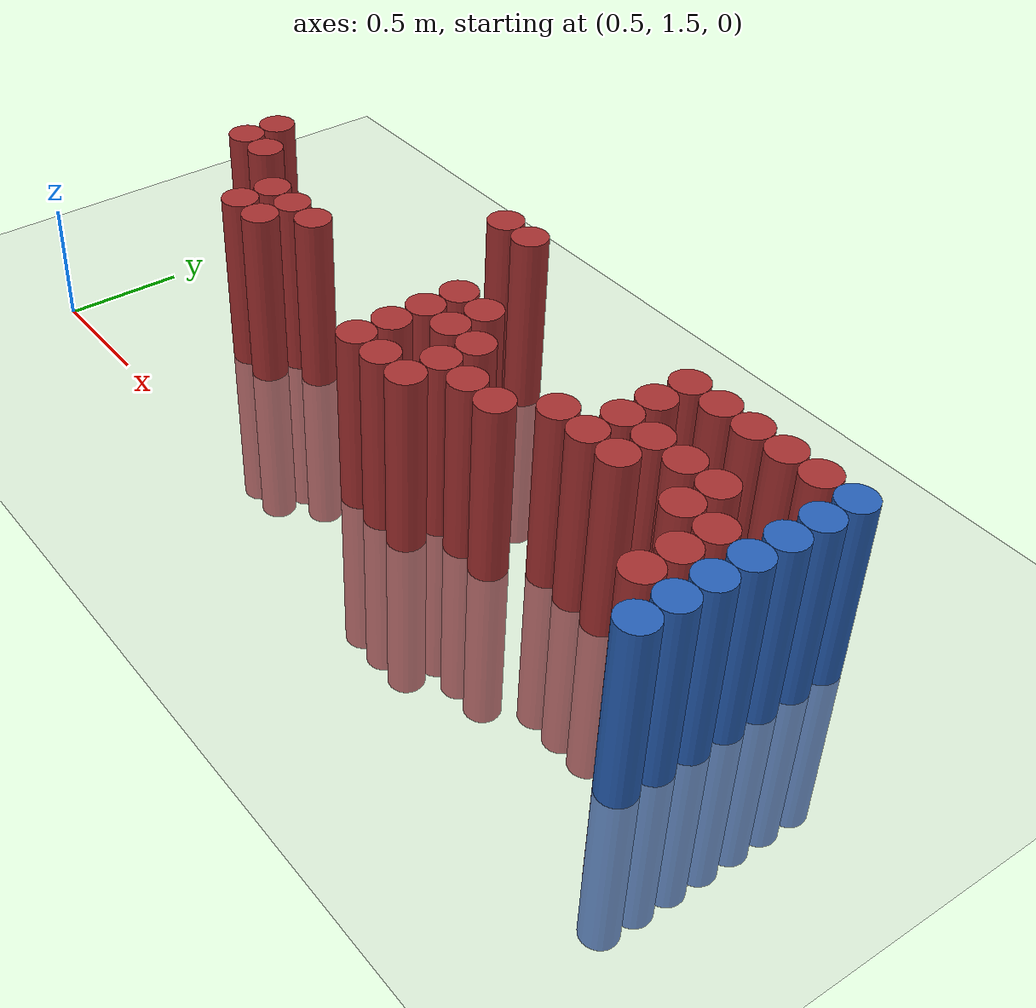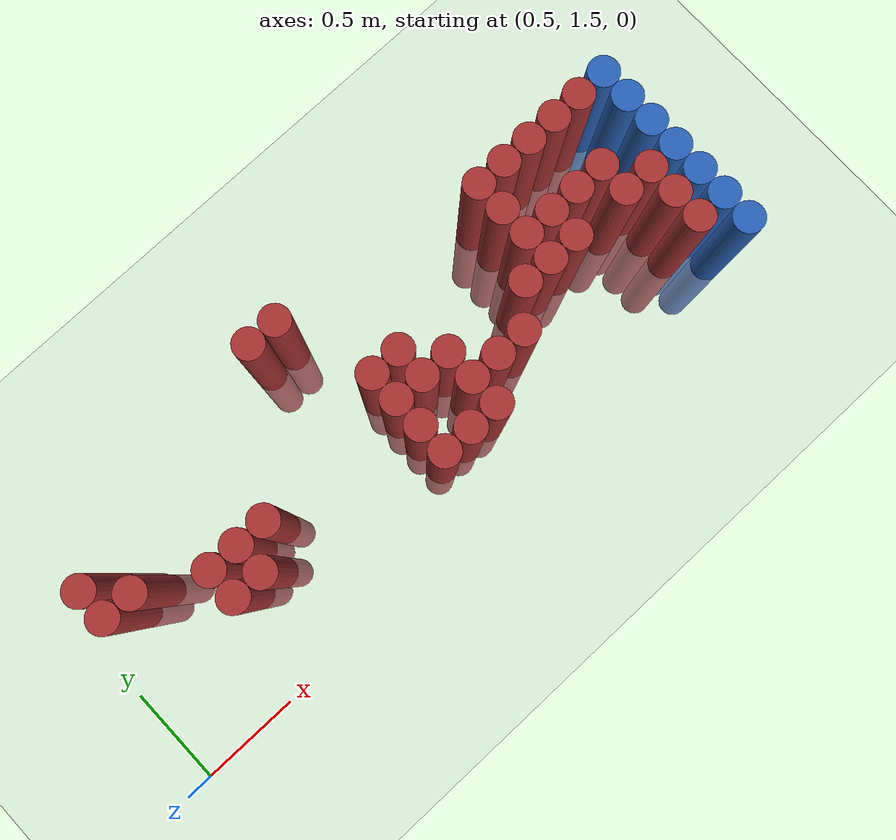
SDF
<sdf version="1.6">
 <world name="default">
  <model name="ground_plane">
   <static>1</static>
   <link name="link">
    <collision name="collision">
     <geometry><plane><normal>0 0 1</normal><size>100 100</size></plane></geometry>
     <surface><friction><ode><mu>100</mu><mu2>50</mu2></ode></friction></surface>
    </collision>
    <visual name="visual">
     <cast_shadows>0</cast_shadows>
     <geometry><plane><normal>0 0 1</normal><size>100 100</size></plane></geometry>
     <material>
      <script><uri>file://media/materials/scripts/gazebo.material</uri><name>Gazebo/Grey</name></script>
     </material>
    </visual>
   </link>
  </model>
  <model name="unit_cylinder_138">
   <static>1</static>
   <pose>3.925000 1.825000 0.000000 0.000000 0.000000 0.000000</pose>
   <link name="link">
    <inertial>
     <mass>1</mass>
     <inertia><ixx>0.145833</ixx><ixy>0</ixy><ixz>0</ixz><iyy>0.145833</iyy><iyz>0</iyz><izz>0.125</izz></inertia>
    </inertial>
    <collision name="collision">
     <geometry><cylinder><radius>0.075000</radius><length>1.5</length></cylinder></geometry>
    </collision>
    <visual name="visual">
     <geometry><cylinder><radius>0.075000</radius><length>1.5</length></cylinder></geometry>
     <material>
      <ambient>0.152000 0.379000 0.720000 1</ambient>
      <diffuse>0.152000 0.379000 0.720000 1</diffuse>
     </material>
     <material>
      <script><name>Gazebo/Grey</name><uri>file://media/materials/scripts/gazebo.material</uri></script>
     </material>
    </visual>
   </link>
  </model>
  <model name="unit_cylinder_140">
   <static>1</static>
   <pose>3.925000 1.975000 0.000000 0.000000 0.000000 0.000000</pose>
   <link name="link">
    <inertial>
     <mass>1</mass>
     <inertia><ixx>0.145833</ixx><ixy>0</ixy><ixz>0</ixz><iyy>0.145833</iyy><iyz>0</iyz><izz>0.125</izz></inertia>
    </inertial>
    <collision name="collision">
     <geometry><cylinder><radius>0.075000</radius><length>1.5</length></cylinder></geometry>
    </collision>
    <visual name="visual">
     <geometry><cylinder><radius>0.075000</radius><length>1.5</length></cylinder></geometry>
     <material>
      <ambient>0.152000 0.379000 0.720000 1</ambient>
      <diffuse>0.152000 0.379000 0.720000 1</diffuse>
     </material>
     <material>
      <script><name>Gazebo/Grey</name><uri>file://media/materials/scripts/gazebo.material</uri></script>
     </material>
    </visual>
   </link>
  </model>
  <model name="unit_cylinder_142">
   <static>1</static>
   <pose>3.925000 2.125000 0.000000 0.000000 0.000000 0.000000</pose>
   <link name="link">
    <inertial>
     <mass>1</mass>
     <inertia><ixx>0.145833</ixx><ixy>0</ixy><ixz>0</ixz><iyy>0.145833</iyy><iyz>0</iyz><izz>0.125</izz></inertia>
    </inertial>
    <collision name="collision">
     <geometry><cylinder><radius>0.075000</radius><length>1.5</length></cylinder></geometry>
    </collision>
    <visual name="visual">
     <geometry><cylinder><radius>0.075000</radius><length>1.5</length></cylinder></geometry>
     <material>
      <ambient>0.152000 0.379000 0.720000 1</ambient>
      <diffuse>0.152000 0.379000 0.720000 1</diffuse>
     </material>
     <material>
      <script><name>Gazebo/Grey</name><uri>file://media/materials/scripts/gazebo.material</uri></script>
     </material>
    </visual>
   </link>
  </model>
  <model name="unit_cylinder_144">
   <static>1</static>
   <pose>3.925000 2.275000 0.000000 0.000000 0.000000 0.000000</pose>
   <link name="link">
    <inertial>
     <mass>1</mass>
     <inertia><ixx>0.145833</ixx><ixy>0</ixy><ixz>0</ixz><iyy>0.145833</iyy><iyz>0</iyz><izz>0.125</izz></inertia>
    </inertial>
    <collision name="collision">
     <geometry><cylinder><radius>0.075000</radius><length>1.5</length></cylinder></geometry>
    </collision>
    <visual name="visual">
     <geometry><cylinder><radius>0.075000</radius><length>1.5</length></cylinder></geometry>
     <material>
      <ambient>0.152000 0.379000 0.720000 1</ambient>
      <diffuse>0.152000 0.379000 0.720000 1</diffuse>
     </material>
     <material>
      <script><name>Gazebo/Grey</name><uri>file://media/materials/scripts/gazebo.material</uri></script>
     </material>
    </visual>
   </link>
  </model>
  <model name="unit_cylinder_146">
   <static>1</static>
   <pose>3.925000 2.425000 0.000000 0.000000 0.000000 0.000000</pose>
   <link name="link">
    <inertial>
     <mass>1</mass>
     <inertia><ixx>0.145833</ixx><ixy>0</ixy><ixz>0</ixz><iyy>0.145833</iyy><iyz>0</iyz><izz>0.125</izz></inertia>
    </inertial>
    <collision name="collision">
     <geometry><cylinder><radius>0.075000</radius><length>1.5</length></cylinder></geometry>
    </collision>
    <visual name="visual">
     <geometry><cylinder><radius>0.075000</radius><length>1.5</length></cylinder></geometry>
     <material>
      <ambient>0.152000 0.379000 0.720000 1</ambient>
      <diffuse>0.152000 0.379000 0.720000 1</diffuse>
     </material>
     <material>
      <script><name>Gazebo/Grey</name><uri>file://media/materials/scripts/gazebo.material</uri></script>
     </material>
    </visual>
   </link>
  </model>
  <model name="unit_cylinder_148">
   <static>1</static>
   <pose>3.925000 2.575000 0.000000 0.000000 0.000000 0.000000</pose>
   <link name="link">
    <inertial>
     <mass>1</mass>
     <inertia><ixx>0.145833</ixx><ixy>0</ixy><ixz>0</ixz><iyy>0.145833</iyy><iyz>0</iyz><izz>0.125</izz></inertia>
    </inertial>
    <collision name="collision">
     <geometry><cylinder><radius>0.075000</radius><length>1.5</length></cylinder></geometry>
    </collision>
    <visual name="visual">
     <geometry><cylinder><radius>0.075000</radius><length>1.5</length></cylinder></geometry>
     <material>
      <ambient>0.152000 0.379000 0.720000 1</ambient>
      <diffuse>0.152000 0.379000 0.720000 1</diffuse>
     </material>
     <material>
      <script><name>Gazebo/Grey</name><uri>file://media/materials/scripts/gazebo.material</uri></script>
     </material>
    </visual>
   </link>
  </model>
  <model name="unit_cylinder_404">
   <static>1</static>
   <pose>0.775000 2.275000 0.000000 0.000000 0.000000 0.000000</pose>
   <link name="link">
    <inertial>
     <mass>1</mass>
     <inertia><ixx>0.145833</ixx><ixy>0</ixy><ixz>0</ixz><iyy>0.145833</iyy><iyz>0</iyz><izz>0.125</izz></inertia>
    </inertial>
    <collision name="collision">
     <geometry><cylinder><radius>0.075000</radius><length>1.5</length></cylinder></geometry>
    </collision>
    <visual name="visual">
     <geometry><cylinder><radius>0.075000</radius><length>1.5</length></cylinder></geometry>
     <material>
      <ambient>0.648000 0.192000 0.192000 1</ambient>
      <diffuse>0.648000 0.192000 0.192000 1</diffuse>
     </material>
     <material>
      <script><name>Gazebo/Grey</name><uri>file://media/materials/scripts/gazebo.material</uri></script>
     </material>
    </visual>
   </link>
  </model>
  <model name="unit_cylinder_405">
   <static>1</static>
   <pose>0.775000 2.425000 0.000000 0.000000 0.000000 0.000000</pose>
   <link name="link">
    <inertial>
     <mass>1</mass>
     <inertia><ixx>0.145833</ixx><ixy>0</ixy><ixz>0</ixz><iyy>0.145833</iyy><iyz>0</iyz><izz>0.125</izz></inertia>
    </inertial>
    <collision name="collision">
     <geometry><cylinder><radius>0.075000</radius><length>1.5</length></cylinder></geometry>
    </collision>
    <visual name="visual">
     <geometry><cylinder><radius>0.075000</radius><length>1.5</length></cylinder></geometry>
     <material>
      <ambient>0.648000 0.192000 0.192000 1</ambient>
      <diffuse>0.648000 0.192000 0.192000 1</diffuse>
     </material>
     <material>
      <script><name>Gazebo/Grey</name><uri>file://media/materials/scripts/gazebo.material</uri></script>
     </material>
    </visual>
   </link>
  </model>
  <model name="unit_cylinder_408">
   <static>1</static>
   <pose>0.925000 2.275000 0.000000 0.000000 0.000000 0.000000</pose>
   <link name="link">
    <inertial>
     <mass>1</mass>
     <inertia><ixx>0.145833</ixx><ixy>0</ixy><ixz>0</ixz><iyy>0.145833</iyy><iyz>0</iyz><izz>0.125</izz></inertia>
    </inertial>
    <collision name="collision">
     <geometry><cylinder><radius>0.075000</radius><length>1.5</length></cylinder></geometry>
    </collision>
    <visual name="visual">
     <geometry><cylinder><radius>0.075000</radius><length>1.5</length></cylinder></geometry>
     <material>
      <ambient>0.648000 0.192000 0.192000 1</ambient>
      <diffuse>0.648000 0.192000 0.192000 1</diffuse>
     </material>
     <material>
      <script><name>Gazebo/Grey</name><uri>file://media/materials/scripts/gazebo.material</uri></script>
     </material>
    </visual>
   </link>
  </model>
  <model name="unit_cylinder_416">
   <static>1</static>
   <pose>1.225000 1.975000 0.000000 0.000000 0.000000 0.000000</pose>
   <link name="link">
    <inertial>
     <mass>1</mass>
     <inertia><ixx>0.145833</ixx><ixy>0</ixy><ixz>0</ixz><iyy>0.145833</iyy><iyz>0</iyz><izz>0.125</izz></inertia>
    </inertial>
    <collision name="collision">
     <geometry><cylinder><radius>0.075000</radius><length>1.5</length></cylinder></geometry>
    </collision>
    <visual name="visual">
     <geometry><cylinder><radius>0.075000</radius><length>1.5</length></cylinder></geometry>
     <material>
      <ambient>0.648000 0.192000 0.192000 1</ambient>
      <diffuse>0.648000 0.192000 0.192000 1</diffuse>
     </material>
     <material>
      <script><name>Gazebo/Grey</name><uri>file://media/materials/scripts/gazebo.material</uri></script>
     </material>
    </visual>
   </link>
  </model>
  <model name="unit_cylinder_417">
   <static>1</static>
   <pose>1.225000 2.125000 0.000000 0.000000 0.000000 0.000000</pose>
   <link name="link">
    <inertial>
     <mass>1</mass>
     <inertia><ixx>0.145833</ixx><ixy>0</ixy><ixz>0</ixz><iyy>0.145833</iyy><iyz>0</iyz><izz>0.125</izz></inertia>
    </inertial>
    <collision name="collision">
     <geometry><cylinder><radius>0.075000</radius><length>1.5</length></cylinder></geometry>
    </collision>
    <visual name="visual">
     <geometry><cylinder><radius>0.075000</radius><length>1.5</length></cylinder></geometry>
     <material>
      <ambient>0.648000 0.192000 0.192000 1</ambient>
      <diffuse>0.648000 0.192000 0.192000 1</diffuse>
     </material>
     <material>
      <script><name>Gazebo/Grey</name><uri>file://media/materials/scripts/gazebo.material</uri></script>
     </material>
    </visual>
   </link>
  </model>
  <model name="unit_cylinder_421">
   <static>1</static>
   <pose>1.375000 1.975000 0.000000 0.000000 0.000000 0.000000</pose>
   <link name="link">
    <inertial>
     <mass>1</mass>
     <inertia><ixx>0.145833</ixx><ixy>0</ixy><ixz>0</ixz><iyy>0.145833</iyy><iyz>0</iyz><izz>0.125</izz></inertia>
    </inertial>
    <collision name="collision">
     <geometry><cylinder><radius>0.075000</radius><length>1.5</length></cylinder></geometry>
    </collision>
    <visual name="visual">
     <geometry><cylinder><radius>0.075000</radius><length>1.5</length></cylinder></geometry>
     <material>
      <ambient>0.648000 0.192000 0.192000 1</ambient>
      <diffuse>0.648000 0.192000 0.192000 1</diffuse>
     </material>
     <material>
      <script><name>Gazebo/Grey</name><uri>file://media/materials/scripts/gazebo.material</uri></script>
     </material>
    </visual>
   </link>
  </model>
  <model name="unit_cylinder_422">
   <static>1</static>
   <pose>1.375000 2.125000 0.000000 0.000000 0.000000 0.000000</pose>
   <link name="link">
    <inertial>
     <mass>1</mass>
     <inertia><ixx>0.145833</ixx><ixy>0</ixy><ixz>0</ixz><iyy>0.145833</iyy><iyz>0</iyz><izz>0.125</izz></inertia>
    </inertial>
    <collision name="collision">
     <geometry><cylinder><radius>0.075000</radius><length>1.5</length></cylinder></geometry>
    </collision>
    <visual name="visual">
     <geometry><cylinder><radius>0.075000</radius><length>1.5</length></cylinder></geometry>
     <material>
      <ambient>0.648000 0.192000 0.192000 1</ambient>
      <diffuse>0.648000 0.192000 0.192000 1</diffuse>
     </material>
     <material>
      <script><name>Gazebo/Grey</name><uri>file://media/materials/scripts/gazebo.material</uri></script>
     </material>
    </visual>
   </link>
  </model>
  <model name="unit_cylinder_426">
   <static>1</static>
   <pose>1.525000 2.125000 0.000000 0.000000 0.000000 0.000000</pose>
   <link name="link">
    <inertial>
     <mass>1</mass>
     <inertia><ixx>0.145833</ixx><ixy>0</ixy><ixz>0</ixz><iyy>0.145833</iyy><iyz>0</iyz><izz>0.125</izz></inertia>
    </inertial>
    <collision name="collision">
     <geometry><cylinder><radius>0.075000</radius><length>1.5</length></cylinder></geometry>
    </collision>
    <visual name="visual">
     <geometry><cylinder><radius>0.075000</radius><length>1.5</length></cylinder></geometry>
     <material>
      <ambient>0.648000 0.192000 0.192000 1</ambient>
      <diffuse>0.648000 0.192000 0.192000 1</diffuse>
     </material>
     <material>
      <script><name>Gazebo/Grey</name><uri>file://media/materials/scripts/gazebo.material</uri></script>
     </material>
    </visual>
   </link>
  </model>
  <model name="unit_cylinder_442">
   <static>1</static>
   <pose>1.975000 2.725000 0.000000 0.000000 0.000000 0.000000</pose>
   <link name="link">
    <inertial>
     <mass>1</mass>
     <inertia><ixx>0.145833</ixx><ixy>0</ixy><ixz>0</ixz><iyy>0.145833</iyy><iyz>0</iyz><izz>0.125</izz></inertia>
    </inertial>
    <collision name="collision">
     <geometry><cylinder><radius>0.075000</radius><length>1.5</length></cylinder></geometry>
    </collision>
    <visual name="visual">
     <geometry><cylinder><radius>0.075000</radius><length>1.5</length></cylinder></geometry>
     <material>
      <ambient>0.648000 0.192000 0.192000 1</ambient>
      <diffuse>0.648000 0.192000 0.192000 1</diffuse>
     </material>
     <material>
      <script><name>Gazebo/Grey</name><uri>file://media/materials/scripts/gazebo.material</uri></script>
     </material>
    </visual>
   </link>
  </model>
  <model name="unit_cylinder_454">
   <static>1</static>
   <pose>2.125000 2.725000 0.000000 0.000000 0.000000 0.000000</pose>
   <link name="link">
    <inertial>
     <mass>1</mass>
     <inertia><ixx>0.145833</ixx><ixy>0</ixy><ixz>0</ixz><iyy>0.145833</iyy><iyz>0</iyz><izz>0.125</izz></inertia>
    </inertial>
    <collision name="collision">
     <geometry><cylinder><radius>0.075000</radius><length>1.5</length></cylinder></geometry>
    </collision>
    <visual name="visual">
     <geometry><cylinder><radius>0.075000</radius><length>1.5</length></cylinder></geometry>
     <material>
      <ambient>0.648000 0.192000 0.192000 1</ambient>
      <diffuse>0.648000 0.192000 0.192000 1</diffuse>
     </material>
     <material>
      <script><name>Gazebo/Grey</name><uri>file://media/materials/scripts/gazebo.material</uri></script>
     </material>
    </visual>
   </link>
  </model>
  <model name="unit_cylinder_463">
   <static>1</static>
   <pose>2.275000 1.825000 0.000000 0.000000 0.000000 0.000000</pose>
   <link name="link">
    <inertial>
     <mass>1</mass>
     <inertia><ixx>0.145833</ixx><ixy>0</ixy><ixz>0</ixz><iyy>0.145833</iyy><iyz>0</iyz><izz>0.125</izz></inertia>
    </inertial>
    <collision name="collision">
     <geometry><cylinder><radius>0.075000</radius><length>1.5</length></cylinder></geometry>
    </collision>
    <visual name="visual">
     <geometry><cylinder><radius>0.075000</radius><length>1.5</length></cylinder></geometry>
     <material>
      <ambient>0.648000 0.192000 0.192000 1</ambient>
      <diffuse>0.648000 0.192000 0.192000 1</diffuse>
     </material>
     <material>
      <script><name>Gazebo/Grey</name><uri>file://media/materials/scripts/gazebo.material</uri></script>
     </material>
    </visual>
   </link>
  </model>
  <model name="unit_cylinder_464">
   <static>1</static>
   <pose>2.275000 1.975000 0.000000 0.000000 0.000000 0.000000</pose>
   <link name="link">
    <inertial>
     <mass>1</mass>
     <inertia><ixx>0.145833</ixx><ixy>0</ixy><ixz>0</ixz><iyy>0.145833</iyy><iyz>0</iyz><izz>0.125</izz></inertia>
    </inertial>
    <collision name="collision">
     <geometry><cylinder><radius>0.075000</radius><length>1.5</length></cylinder></geometry>
    </collision>
    <visual name="visual">
     <geometry><cylinder><radius>0.075000</radius><length>1.5</length></cylinder></geometry>
     <material>
      <ambient>0.648000 0.192000 0.192000 1</ambient>
      <diffuse>0.648000 0.192000 0.192000 1</diffuse>
     </material>
     <material>
      <script><name>Gazebo/Grey</name><uri>file://media/materials/scripts/gazebo.material</uri></script>
     </material>
    </visual>
   </link>
  </model>
  <model name="unit_cylinder_465">
   <static>1</static>
   <pose>2.275000 2.125000 0.000000 0.000000 0.000000 0.000000</pose>
   <link name="link">
    <inertial>
     <mass>1</mass>
     <inertia><ixx>0.145833</ixx><ixy>0</ixy><ixz>0</ixz><iyy>0.145833</iyy><iyz>0</iyz><izz>0.125</izz></inertia>
    </inertial>
    <collision name="collision">
     <geometry><cylinder><radius>0.075000</radius><length>1.5</length></cylinder></geometry>
    </collision>
    <visual name="visual">
     <geometry><cylinder><radius>0.075000</radius><length>1.5</length></cylinder></geometry>
     <material>
      <ambient>0.648000 0.192000 0.192000 1</ambient>
      <diffuse>0.648000 0.192000 0.192000 1</diffuse>
     </material>
     <material>
      <script><name>Gazebo/Grey</name><uri>file://media/materials/scripts/gazebo.material</uri></script>
     </material>
    </visual>
   </link>
  </model>
  <model name="unit_cylinder_466">
   <static>1</static>
   <pose>2.275000 2.275000 0.000000 0.000000 0.000000 0.000000</pose>
   <link name="link">
    <inertial>
     <mass>1</mass>
     <inertia><ixx>0.145833</ixx><ixy>0</ixy><ixz>0</ixz><iyy>0.145833</iyy><iyz>0</iyz><izz>0.125</izz></inertia>
    </inertial>
    <collision name="collision">
     <geometry><cylinder><radius>0.075000</radius><length>1.5</length></cylinder></geometry>
    </collision>
    <visual name="visual">
     <geometry><cylinder><radius>0.075000</radius><length>1.5</length></cylinder></geometry>
     <material>
      <ambient>0.648000 0.192000 0.192000 1</ambient>
      <diffuse>0.648000 0.192000 0.192000 1</diffuse>
     </material>
     <material>
      <script><name>Gazebo/Grey</name><uri>file://media/materials/scripts/gazebo.material</uri></script>
     </material>
    </visual>
   </link>
  </model>
  <model name="unit_cylinder_478">
   <static>1</static>
   <pose>2.425000 1.825000 0.000000 0.000000 0.000000 0.000000</pose>
   <link name="link">
    <inertial>
     <mass>1</mass>
     <inertia><ixx>0.145833</ixx><ixy>0</ixy><ixz>0</ixz><iyy>0.145833</iyy><iyz>0</iyz><izz>0.125</izz></inertia>
    </inertial>
    <collision name="collision">
     <geometry><cylinder><radius>0.075000</radius><length>1.5</length></cylinder></geometry>
    </collision>
    <visual name="visual">
     <geometry><cylinder><radius>0.075000</radius><length>1.5</length></cylinder></geometry>
     <material>
      <ambient>0.648000 0.192000 0.192000 1</ambient>
      <diffuse>0.648000 0.192000 0.192000 1</diffuse>
     </material>
     <material>
      <script><name>Gazebo/Grey</name><uri>file://media/materials/scripts/gazebo.material</uri></script>
     </material>
    </visual>
   </link>
  </model>
  <model name="unit_cylinder_479">
   <static>1</static>
   <pose>2.425000 2.125000 0.000000 0.000000 0.000000 0.000000</pose>
   <link name="link">
    <inertial>
     <mass>1</mass>
     <inertia><ixx>0.145833</ixx><ixy>0</ixy><ixz>0</ixz><iyy>0.145833</iyy><iyz>0</iyz><izz>0.125</izz></inertia>
    </inertial>
    <collision name="collision">
     <geometry><cylinder><radius>0.075000</radius><length>1.5</length></cylinder></geometry>
    </collision>
    <visual name="visual">
     <geometry><cylinder><radius>0.075000</radius><length>1.5</length></cylinder></geometry>
     <material>
      <ambient>0.648000 0.192000 0.192000 1</ambient>
      <diffuse>0.648000 0.192000 0.192000 1</diffuse>
     </material>
     <material>
      <script><name>Gazebo/Grey</name><uri>file://media/materials/scripts/gazebo.material</uri></script>
     </material>
    </visual>
   </link>
  </model>
  <model name="unit_cylinder_480">
   <static>1</static>
   <pose>2.425000 2.275000 0.000000 0.000000 0.000000 0.000000</pose>
   <link name="link">
    <inertial>
     <mass>1</mass>
     <inertia><ixx>0.145833</ixx><ixy>0</ixy><ixz>0</ixz><iyy>0.145833</iyy><iyz>0</iyz><izz>0.125</izz></inertia>
    </inertial>
    <collision name="collision">
     <geometry><cylinder><radius>0.075000</radius><length>1.5</length></cylinder></geometry>
    </collision>
    <visual name="visual">
     <geometry><cylinder><radius>0.075000</radius><length>1.5</length></cylinder></geometry>
     <material>
      <ambient>0.648000 0.192000 0.192000 1</ambient>
      <diffuse>0.648000 0.192000 0.192000 1</diffuse>
     </material>
     <material>
      <script><name>Gazebo/Grey</name><uri>file://media/materials/scripts/gazebo.material</uri></script>
     </material>
    </visual>
   </link>
  </model>
  <model name="unit_cylinder_491">
   <static>1</static>
   <pose>2.575000 1.825000 0.000000 0.000000 0.000000 0.000000</pose>
   <link name="link">
    <inertial>
     <mass>1</mass>
     <inertia><ixx>0.145833</ixx><ixy>0</ixy><ixz>0</ixz><iyy>0.145833</iyy><iyz>0</iyz><izz>0.125</izz></inertia>
    </inertial>
    <collision name="collision">
     <geometry><cylinder><radius>0.075000</radius><length>1.5</length></cylinder></geometry>
    </collision>
    <visual name="visual">
     <geometry><cylinder><radius>0.075000</radius><length>1.5</length></cylinder></geometry>
     <material>
      <ambient>0.648000 0.192000 0.192000 1</ambient>
      <diffuse>0.648000 0.192000 0.192000 1</diffuse>
     </material>
     <material>
      <script><name>Gazebo/Grey</name><uri>file://media/materials/scripts/gazebo.material</uri></script>
     </material>
    </visual>
   </link>
  </model>
  <model name="unit_cylinder_492">
   <static>1</static>
   <pose>2.575000 1.975000 0.000000 0.000000 0.000000 0.000000</pose>
   <link name="link">
    <inertial>
     <mass>1</mass>
     <inertia><ixx>0.145833</ixx><ixy>0</ixy><ixz>0</ixz><iyy>0.145833</iyy><iyz>0</iyz><izz>0.125</izz></inertia>
    </inertial>
    <collision name="collision">
     <geometry><cylinder><radius>0.075000</radius><length>1.5</length></cylinder></geometry>
    </collision>
    <visual name="visual">
     <geometry><cylinder><radius>0.075000</radius><length>1.5</length></cylinder></geometry>
     <material>
      <ambient>0.648000 0.192000 0.192000 1</ambient>
      <diffuse>0.648000 0.192000 0.192000 1</diffuse>
     </material>
     <material>
      <script><name>Gazebo/Grey</name><uri>file://media/materials/scripts/gazebo.material</uri></script>
     </material>
    </visual>
   </link>
  </model>
  <model name="unit_cylinder_493">
   <static>1</static>
   <pose>2.575000 2.125000 0.000000 0.000000 0.000000 0.000000</pose>
   <link name="link">
    <inertial>
     <mass>1</mass>
     <inertia><ixx>0.145833</ixx><ixy>0</ixy><ixz>0</ixz><iyy>0.145833</iyy><iyz>0</iyz><izz>0.125</izz></inertia>
    </inertial>
    <collision name="collision">
     <geometry><cylinder><radius>0.075000</radius><length>1.5</length></cylinder></geometry>
    </collision>
    <visual name="visual">
     <geometry><cylinder><radius>0.075000</radius><length>1.5</length></cylinder></geometry>
     <material>
      <ambient>0.648000 0.192000 0.192000 1</ambient>
      <diffuse>0.648000 0.192000 0.192000 1</diffuse>
     </material>
     <material>
      <script><name>Gazebo/Grey</name><uri>file://media/materials/scripts/gazebo.material</uri></script>
     </material>
    </visual>
   </link>
  </model>
  <model name="unit_cylinder_498">
   <static>1</static>
   <pose>2.725000 1.975000 0.000000 0.000000 0.000000 0.000000</pose>
   <link name="link">
    <inertial>
     <mass>1</mass>
     <inertia><ixx>0.145833</ixx><ixy>0</ixy><ixz>0</ixz><iyy>0.145833</iyy><iyz>0</iyz><izz>0.125</izz></inertia>
    </inertial>
    <collision name="collision">
     <geometry><cylinder><radius>0.075000</radius><length>1.5</length></cylinder></geometry>
    </collision>
    <visual name="visual">
     <geometry><cylinder><radius>0.075000</radius><length>1.5</length></cylinder></geometry>
     <material>
      <ambient>0.648000 0.192000 0.192000 1</ambient>
      <diffuse>0.648000 0.192000 0.192000 1</diffuse>
     </material>
     <material>
      <script><name>Gazebo/Grey</name><uri>file://media/materials/scripts/gazebo.material</uri></script>
     </material>
    </visual>
   </link>
  </model>
  <model name="unit_cylinder_501">
   <static>1</static>
   <pose>2.875000 1.975000 0.000000 0.000000 0.000000 0.000000</pose>
   <link name="link">
    <inertial>
     <mass>1</mass>
     <inertia><ixx>0.145833</ixx><ixy>0</ixy><ixz>0</ixz><iyy>0.145833</iyy><iyz>0</iyz><izz>0.125</izz></inertia>
    </inertial>
    <collision name="collision">
     <geometry><cylinder><radius>0.075000</radius><length>1.5</length></cylinder></geometry>
    </collision>
    <visual name="visual">
     <geometry><cylinder><radius>0.075000</radius><length>1.5</length></cylinder></geometry>
     <material>
      <ambient>0.648000 0.192000 0.192000 1</ambient>
      <diffuse>0.648000 0.192000 0.192000 1</diffuse>
     </material>
     <material>
      <script><name>Gazebo/Grey</name><uri>file://media/materials/scripts/gazebo.material</uri></script>
     </material>
    </visual>
   </link>
  </model>
  <model name="unit_cylinder_504">
   <static>1</static>
   <pose>3.025000 2.125000 0.000000 0.000000 0.000000 0.000000</pose>
   <link name="link">
    <inertial>
     <mass>1</mass>
     <inertia><ixx>0.145833</ixx><ixy>0</ixy><ixz>0</ixz><iyy>0.145833</iyy><iyz>0</iyz><izz>0.125</izz></inertia>
    </inertial>
    <collision name="collision">
     <geometry><cylinder><radius>0.075000</radius><length>1.5</length></cylinder></geometry>
    </collision>
    <visual name="visual">
     <geometry><cylinder><radius>0.075000</radius><length>1.5</length></cylinder></geometry>
     <material>
      <ambient>0.648000 0.192000 0.192000 1</ambient>
      <diffuse>0.648000 0.192000 0.192000 1</diffuse>
     </material>
     <material>
      <script><name>Gazebo/Grey</name><uri>file://media/materials/scripts/gazebo.material</uri></script>
     </material>
    </visual>
   </link>
  </model>
  <model name="unit_cylinder_509">
   <static>1</static>
   <pose>3.175000 2.125000 0.000000 0.000000 0.000000 0.000000</pose>
   <link name="link">
    <inertial>
     <mass>1</mass>
     <inertia><ixx>0.145833</ixx><ixy>0</ixy><ixz>0</ixz><iyy>0.145833</iyy><iyz>0</iyz><izz>0.125</izz></inertia>
    </inertial>
    <collision name="collision">
     <geometry><cylinder><radius>0.075000</radius><length>1.5</length></cylinder></geometry>
    </collision>
    <visual name="visual">
     <geometry><cylinder><radius>0.075000</radius><length>1.5</length></cylinder></geometry>
     <material>
      <ambient>0.648000 0.192000 0.192000 1</ambient>
      <diffuse>0.648000 0.192000 0.192000 1</diffuse>
     </material>
     <material>
      <script><name>Gazebo/Grey</name><uri>file://media/materials/scripts/gazebo.material</uri></script>
     </material>
    </visual>
   </link>
  </model>
  <model name="unit_cylinder_510">
   <static>1</static>
   <pose>3.175000 2.275000 0.000000 0.000000 0.000000 0.000000</pose>
   <link name="link">
    <inertial>
     <mass>1</mass>
     <inertia><ixx>0.145833</ixx><ixy>0</ixy><ixz>0</ixz><iyy>0.145833</iyy><iyz>0</iyz><izz>0.125</izz></inertia>
    </inertial>
    <collision name="collision">
     <geometry><cylinder><radius>0.075000</radius><length>1.5</length></cylinder></geometry>
    </collision>
    <visual name="visual">
     <geometry><cylinder><radius>0.075000</radius><length>1.5</length></cylinder></geometry>
     <material>
      <ambient>0.648000 0.192000 0.192000 1</ambient>
      <diffuse>0.648000 0.192000 0.192000 1</diffuse>
     </material>
     <material>
      <script><name>Gazebo/Grey</name><uri>file://media/materials/scripts/gazebo.material</uri></script>
     </material>
    </visual>
   </link>
  </model>
  <model name="unit_cylinder_511">
   <static>1</static>
   <pose>3.175000 2.425000 0.000000 0.000000 0.000000 0.000000</pose>
   <link name="link">
    <inertial>
     <mass>1</mass>
     <inertia><ixx>0.145833</ixx><ixy>0</ixy><ixz>0</ixz><iyy>0.145833</iyy><iyz>0</iyz><izz>0.125</izz></inertia>
    </inertial>
    <collision name="collision">
     <geometry><cylinder><radius>0.075000</radius><length>1.5</length></cylinder></geometry>
    </collision>
    <visual name="visual">
     <geometry><cylinder><radius>0.075000</radius><length>1.5</length></cylinder></geometry>
     <material>
      <ambient>0.648000 0.192000 0.192000 1</ambient>
      <diffuse>0.648000 0.192000 0.192000 1</diffuse>
     </material>
     <material>
      <script><name>Gazebo/Grey</name><uri>file://media/materials/scripts/gazebo.material</uri></script>
     </material>
    </visual>
   </link>
  </model>
  <model name="unit_cylinder_512">
   <static>1</static>
   <pose>3.175000 2.575000 0.000000 0.000000 0.000000 0.000000</pose>
   <link name="link">
    <inertial>
     <mass>1</mass>
     <inertia><ixx>0.145833</ixx><ixy>0</ixy><ixz>0</ixz><iyy>0.145833</iyy><iyz>0</iyz><izz>0.125</izz></inertia>
    </inertial>
    <collision name="collision">
     <geometry><cylinder><radius>0.075000</radius><length>1.5</length></cylinder></geometry>
    </collision>
    <visual name="visual">
     <geometry><cylinder><radius>0.075000</radius><length>1.5</length></cylinder></geometry>
     <material>
      <ambient>0.648000 0.192000 0.192000 1</ambient>
      <diffuse>0.648000 0.192000 0.192000 1</diffuse>
     </material>
     <material>
      <script><name>Gazebo/Grey</name><uri>file://media/materials/scripts/gazebo.material</uri></script>
     </material>
    </visual>
   </link>
  </model>
  <model name="unit_cylinder_517">
   <static>1</static>
   <pose>3.325000 2.125000 0.000000 0.000000 0.000000 0.000000</pose>
   <link name="link">
    <inertial>
     <mass>1</mass>
     <inertia><ixx>0.145833</ixx><ixy>0</ixy><ixz>0</ixz><iyy>0.145833</iyy><iyz>0</iyz><izz>0.125</izz></inertia>
    </inertial>
    <collision name="collision">
     <geometry><cylinder><radius>0.075000</radius><length>1.5</length></cylinder></geometry>
    </collision>
    <visual name="visual">
     <geometry><cylinder><radius>0.075000</radius><length>1.5</length></cylinder></geometry>
     <material>
      <ambient>0.648000 0.192000 0.192000 1</ambient>
      <diffuse>0.648000 0.192000 0.192000 1</diffuse>
     </material>
     <material>
      <script><name>Gazebo/Grey</name><uri>file://media/materials/scripts/gazebo.material</uri></script>
     </material>
    </visual>
   </link>
  </model>
  <model name="unit_cylinder_518">
   <static>1</static>
   <pose>3.325000 2.275000 0.000000 0.000000 0.000000 0.000000</pose>
   <link name="link">
    <inertial>
     <mass>1</mass>
     <inertia><ixx>0.145833</ixx><ixy>0</ixy><ixz>0</ixz><iyy>0.145833</iyy><iyz>0</iyz><izz>0.125</izz></inertia>
    </inertial>
    <collision name="collision">
     <geometry><cylinder><radius>0.075000</radius><length>1.5</length></cylinder></geometry>
    </collision>
    <visual name="visual">
     <geometry><cylinder><radius>0.075000</radius><length>1.5</length></cylinder></geometry>
     <material>
      <ambient>0.648000 0.192000 0.192000 1</ambient>
      <diffuse>0.648000 0.192000 0.192000 1</diffuse>
     </material>
     <material>
      <script><name>Gazebo/Grey</name><uri>file://media/materials/scripts/gazebo.material</uri></script>
     </material>
    </visual>
   </link>
  </model>
  <model name="unit_cylinder_519">
   <static>1</static>
   <pose>3.325000 2.575000 0.000000 0.000000 0.000000 0.000000</pose>
   <link name="link">
    <inertial>
     <mass>1</mass>
     <inertia><ixx>0.145833</ixx><ixy>0</ixy><ixz>0</ixz><iyy>0.145833</iyy><iyz>0</iyz><izz>0.125</izz></inertia>
    </inertial>
    <collision name="collision">
     <geometry><cylinder><radius>0.075000</radius><length>1.5</length></cylinder></geometry>
    </collision>
    <visual name="visual">
     <geometry><cylinder><radius>0.075000</radius><length>1.5</length></cylinder></geometry>
     <material>
      <ambient>0.648000 0.192000 0.192000 1</ambient>
      <diffuse>0.648000 0.192000 0.192000 1</diffuse>
     </material>
     <material>
      <script><name>Gazebo/Grey</name><uri>file://media/materials/scripts/gazebo.material</uri></script>
     </material>
    </visual>
   </link>
  </model>
  <model name="unit_cylinder_532">
   <static>1</static>
   <pose>3.475000 2.275000 0.000000 0.000000 0.000000 0.000000</pose>
   <link name="link">
    <inertial>
     <mass>1</mass>
     <inertia><ixx>0.145833</ixx><ixy>0</ixy><ixz>0</ixz><iyy>0.145833</iyy><iyz>0</iyz><izz>0.125</izz></inertia>
    </inertial>
    <collision name="collision">
     <geometry><cylinder><radius>0.075000</radius><length>1.5</length></cylinder></geometry>
    </collision>
    <visual name="visual">
     <geometry><cylinder><radius>0.075000</radius><length>1.5</length></cylinder></geometry>
     <material>
      <ambient>0.648000 0.192000 0.192000 1</ambient>
      <diffuse>0.648000 0.192000 0.192000 1</diffuse>
     </material>
     <material>
      <script><name>Gazebo/Grey</name><uri>file://media/materials/scripts/gazebo.material</uri></script>
     </material>
    </visual>
   </link>
  </model>
  <model name="unit_cylinder_533">
   <static>1</static>
   <pose>3.475000 2.575000 0.000000 0.000000 0.000000 0.000000</pose>
   <link name="link">
    <inertial>
     <mass>1</mass>
     <inertia><ixx>0.145833</ixx><ixy>0</ixy><ixz>0</ixz><iyy>0.145833</iyy><iyz>0</iyz><izz>0.125</izz></inertia>
    </inertial>
    <collision name="collision">
     <geometry><cylinder><radius>0.075000</radius><length>1.5</length></cylinder></geometry>
    </collision>
    <visual name="visual">
     <geometry><cylinder><radius>0.075000</radius><length>1.5</length></cylinder></geometry>
     <material>
      <ambient>0.648000 0.192000 0.192000 1</ambient>
      <diffuse>0.648000 0.192000 0.192000 1</diffuse>
     </material>
     <material>
      <script><name>Gazebo/Grey</name><uri>file://media/materials/scripts/gazebo.material</uri></script>
     </material>
    </visual>
   </link>
  </model>
  <model name="unit_cylinder_545">
   <static>1</static>
   <pose>3.625000 2.125000 0.000000 0.000000 0.000000 0.000000</pose>
   <link name="link">
    <inertial>
     <mass>1</mass>
     <inertia><ixx>0.145833</ixx><ixy>0</ixy><ixz>0</ixz><iyy>0.145833</iyy><iyz>0</iyz><izz>0.125</izz></inertia>
    </inertial>
    <collision name="collision">
     <geometry><cylinder><radius>0.075000</radius><length>1.5</length></cylinder></geometry>
    </collision>
    <visual name="visual">
     <geometry><cylinder><radius>0.075000</radius><length>1.5</length></cylinder></geometry>
     <material>
      <ambient>0.648000 0.192000 0.192000 1</ambient>
      <diffuse>0.648000 0.192000 0.192000 1</diffuse>
     </material>
     <material>
      <script><name>Gazebo/Grey</name><uri>file://media/materials/scripts/gazebo.material</uri></script>
     </material>
    </visual>
   </link>
  </model>
  <model name="unit_cylinder_546">
   <static>1</static>
   <pose>3.625000 2.275000 0.000000 0.000000 0.000000 0.000000</pose>
   <link name="link">
    <inertial>
     <mass>1</mass>
     <inertia><ixx>0.145833</ixx><ixy>0</ixy><ixz>0</ixz><iyy>0.145833</iyy><iyz>0</iyz><izz>0.125</izz></inertia>
    </inertial>
    <collision name="collision">
     <geometry><cylinder><radius>0.075000</radius><length>1.5</length></cylinder></geometry>
    </collision>
    <visual name="visual">
     <geometry><cylinder><radius>0.075000</radius><length>1.5</length></cylinder></geometry>
     <material>
      <ambient>0.648000 0.192000 0.192000 1</ambient>
      <diffuse>0.648000 0.192000 0.192000 1</diffuse>
     </material>
     <material>
      <script><name>Gazebo/Grey</name><uri>file://media/materials/scripts/gazebo.material</uri></script>
     </material>
    </visual>
   </link>
  </model>
  <model name="unit_cylinder_547">
   <static>1</static>
   <pose>3.625000 2.575000 0.000000 0.000000 0.000000 0.000000</pose>
   <link name="link">
    <inertial>
     <mass>1</mass>
     <inertia><ixx>0.145833</ixx><ixy>0</ixy><ixz>0</ixz><iyy>0.145833</iyy><iyz>0</iyz><izz>0.125</izz></inertia>
    </inertial>
    <collision name="collision">
     <geometry><cylinder><radius>0.075000</radius><length>1.5</length></cylinder></geometry>
    </collision>
    <visual name="visual">
     <geometry><cylinder><radius>0.075000</radius><length>1.5</length></cylinder></geometry>
     <material>
      <ambient>0.648000 0.192000 0.192000 1</ambient>
      <diffuse>0.648000 0.192000 0.192000 1</diffuse>
     </material>
     <material>
      <script><name>Gazebo/Grey</name><uri>file://media/materials/scripts/gazebo.material</uri></script>
     </material>
    </visual>
   </link>
  </model>
  <model name="unit_cylinder_560">
   <static>1</static>
   <pose>3.775000 1.825000 0.000000 0.000000 0.000000 0.000000</pose>
   <link name="link">
    <inertial>
     <mass>1</mass>
     <inertia><ixx>0.145833</ixx><ixy>0</ixy><ixz>0</ixz><iyy>0.145833</iyy><iyz>0</iyz><izz>0.125</izz></inertia>
    </inertial>
    <collision name="collision">
     <geometry><cylinder><radius>0.075000</radius><length>1.5</length></cylinder></geometry>
    </collision>
    <visual name="visual">
     <geometry><cylinder><radius>0.075000</radius><length>1.5</length></cylinder></geometry>
     <material>
      <ambient>0.648000 0.192000 0.192000 1</ambient>
      <diffuse>0.648000 0.192000 0.192000 1</diffuse>
     </material>
     <material>
      <script><name>Gazebo/Grey</name><uri>file://media/materials/scripts/gazebo.material</uri></script>
     </material>
    </visual>
   </link>
  </model>
  <model name="unit_cylinder_561">
   <static>1</static>
   <pose>3.775000 1.975000 0.000000 0.000000 0.000000 0.000000</pose>
   <link name="link">
    <inertial>
     <mass>1</mass>
     <inertia><ixx>0.145833</ixx><ixy>0</ixy><ixz>0</ixz><iyy>0.145833</iyy><iyz>0</iyz><izz>0.125</izz></inertia>
    </inertial>
    <collision name="collision">
     <geometry><cylinder><radius>0.075000</radius><length>1.5</length></cylinder></geometry>
    </collision>
    <visual name="visual">
     <geometry><cylinder><radius>0.075000</radius><length>1.5</length></cylinder></geometry>
     <material>
      <ambient>0.648000 0.192000 0.192000 1</ambient>
      <diffuse>0.648000 0.192000 0.192000 1</diffuse>
     </material>
     <material>
      <script><name>Gazebo/Grey</name><uri>file://media/materials/scripts/gazebo.material</uri></script>
     </material>
    </visual>
   </link>
  </model>
  <model name="unit_cylinder_562">
   <static>1</static>
   <pose>3.775000 2.125000 0.000000 0.000000 0.000000 0.000000</pose>
   <link name="link">
    <inertial>
     <mass>1</mass>
     <inertia><ixx>0.145833</ixx><ixy>0</ixy><ixz>0</ixz><iyy>0.145833</iyy><iyz>0</iyz><izz>0.125</izz></inertia>
    </inertial>
    <collision name="collision">
     <geometry><cylinder><radius>0.075000</radius><length>1.5</length></cylinder></geometry>
    </collision>
    <visual name="visual">
     <geometry><cylinder><radius>0.075000</radius><length>1.5</length></cylinder></geometry>
     <material>
      <ambient>0.648000 0.192000 0.192000 1</ambient>
      <diffuse>0.648000 0.192000 0.192000 1</diffuse>
     </material>
     <material>
      <script><name>Gazebo/Grey</name><uri>file://media/materials/scripts/gazebo.material</uri></script>
     </material>
    </visual>
   </link>
  </model>
  <model name="unit_cylinder_563">
   <static>1</static>
   <pose>3.775000 2.575000 0.000000 0.000000 0.000000 0.000000</pose>
   <link name="link">
    <inertial>
     <mass>1</mass>
     <inertia><ixx>0.145833</ixx><ixy>0</ixy><ixz>0</ixz><iyy>0.145833</iyy><iyz>0</iyz><izz>0.125</izz></inertia>
    </inertial>
    <collision name="collision">
     <geometry><cylinder><radius>0.075000</radius><length>1.5</length></cylinder></geometry>
    </collision>
    <visual name="visual">
     <geometry><cylinder><radius>0.075000</radius><length>1.5</length></cylinder></geometry>
     <material>
      <ambient>0.648000 0.192000 0.192000 1</ambient>
      <diffuse>0.648000 0.192000 0.192000 1</diffuse>
     </material>
     <material>
      <script><name>Gazebo/Grey</name><uri>file://media/materials/scripts/gazebo.material</uri></script>
     </material>
    </visual>
   </link>
  </model>
  <model name="unit_cylinder_594">
   <static>1</static>
   <pose>3.925000 1.675000 0.000000 0.000000 0.000000 0.000000</pose>
   <link name="link">
    <inertial>
     <mass>1</mass>
     <inertia><ixx>0.145833</ixx><ixy>0</ixy><ixz>0</ixz><iyy>0.145833</iyy><iyz>0</iyz><izz>0.125</izz></inertia>
    </inertial>
    <collision name="collision">
     <geometry><cylinder><radius>0.075000</radius><length>1.5</length></cylinder></geometry>
    </collision>
    <visual name="visual">
     <geometry><cylinder><radius>0.075000</radius><length>1.5</length></cylinder></geometry>
     <material>
      <ambient>0.152000 0.379000 0.720000 1</ambient>
      <diffuse>0.152000 0.379000 0.720000 1</diffuse>
     </material>
     <material>
      <script><name>Gazebo/Grey</name><uri>file://media/materials/scripts/gazebo.material</uri></script>
     </material>
    </visual>
   </link>
  </model>
  <model name="unit_cylinder_595">
   <static>1</static>
   <pose>3.925000 1.825000 0.000000 0.000000 0.000000 0.000000</pose>
   <link name="link">
    <inertial>
     <mass>1</mass>
     <inertia><ixx>0.145833</ixx><ixy>0</ixy><ixz>0</ixz><iyy>0.145833</iyy><iyz>0</iyz><izz>0.125</izz></inertia>
    </inertial>
    <collision name="collision">
     <geometry><cylinder><radius>0.075000</radius><length>1.5</length></cylinder></geometry>
    </collision>
    <visual name="visual">
     <geometry><cylinder><radius>0.075000</radius><length>1.5</length></cylinder></geometry>
     <material>
      <ambient>0.152000 0.379000 0.720000 1</ambient>
      <diffuse>0.152000 0.379000 0.720000 1</diffuse>
     </material>
     <material>
      <script><name>Gazebo/Grey</name><uri>file://media/materials/scripts/gazebo.material</uri></script>
     </material>
    </visual>
   </link>
  </model>
  <model name="unit_cylinder_596">
   <static>1</static>
   <pose>3.925000 1.975000 0.000000 0.000000 0.000000 0.000000</pose>
   <link name="link">
    <inertial>
     <mass>1</mass>
     <inertia><ixx>0.145833</ixx><ixy>0</ixy><ixz>0</ixz><iyy>0.145833</iyy><iyz>0</iyz><izz>0.125</izz></inertia>
    </inertial>
    <collision name="collision">
     <geometry><cylinder><radius>0.075000</radius><length>1.5</length></cylinder></geometry>
    </collision>
    <visual name="visual">
     <geometry><cylinder><radius>0.075000</radius><length>1.5</length></cylinder></geometry>
     <material>
      <ambient>0.152000 0.379000 0.720000 1</ambient>
      <diffuse>0.152000 0.379000 0.720000 1</diffuse>
     </material>
     <material>
      <script><name>Gazebo/Grey</name><uri>file://media/materials/scripts/gazebo.material</uri></script>
     </material>
    </visual>
   </link>
  </model>
  <model name="unit_cylinder_597">
   <static>1</static>
   <pose>3.925000 2.125000 0.000000 0.000000 0.000000 0.000000</pose>
   <link name="link">
    <inertial>
     <mass>1</mass>
     <inertia><ixx>0.145833</ixx><ixy>0</ixy><ixz>0</ixz><iyy>0.145833</iyy><iyz>0</iyz><izz>0.125</izz></inertia>
    </inertial>
    <collision name="collision">
     <geometry><cylinder><radius>0.075000</radius><length>1.5</length></cylinder></geometry>
    </collision>
    <visual name="visual">
     <geometry><cylinder><radius>0.075000</radius><length>1.5</length></cylinder></geometry>
     <material>
      <ambient>0.152000 0.379000 0.720000 1</ambient>
      <diffuse>0.152000 0.379000 0.720000 1</diffuse>
     </material>
     <material>
      <script><name>Gazebo/Grey</name><uri>file://media/materials/scripts/gazebo.material</uri></script>
     </material>
    </visual>
   </link>
  </model>
  <model name="unit_cylinder_598">
   <static>1</static>
   <pose>3.925000 2.275000 0.000000 0.000000 0.000000 0.000000</pose>
   <link name="link">
    <inertial>
     <mass>1</mass>
     <inertia><ixx>0.145833</ixx><ixy>0</ixy><ixz>0</ixz><iyy>0.145833</iyy><iyz>0</iyz><izz>0.125</izz></inertia>
    </inertial>
    <collision name="collision">
     <geometry><cylinder><radius>0.075000</radius><length>1.5</length></cylinder></geometry>
    </collision>
    <visual name="visual">
     <geometry><cylinder><radius>0.075000</radius><length>1.5</length></cylinder></geometry>
     <material>
      <ambient>0.152000 0.379000 0.720000 1</ambient>
      <diffuse>0.152000 0.379000 0.720000 1</diffuse>
     </material>
     <material>
      <script><name>Gazebo/Grey</name><uri>file://media/materials/scripts/gazebo.material</uri></script>
     </material>
    </visual>
   </link>
  </model>
  <model name="unit_cylinder_599">
   <static>1</static>
   <pose>3.925000 2.425000 0.000000 0.000000 0.000000 0.000000</pose>
   <link name="link">
    <inertial>
     <mass>1</mass>
     <inertia><ixx>0.145833</ixx><ixy>0</ixy><ixz>0</ixz><iyy>0.145833</iyy><iyz>0</iyz><izz>0.125</izz></inertia>
    </inertial>
    <collision name="collision">
     <geometry><cylinder><radius>0.075000</radius><length>1.5</length></cylinder></geometry>
    </collision>
    <visual name="visual">
     <geometry><cylinder><radius>0.075000</radius><length>1.5</length></cylinder></geometry>
     <material>
      <ambient>0.152000 0.379000 0.720000 1</ambient>
      <diffuse>0.152000 0.379000 0.720000 1</diffuse>
     </material>
     <material>
      <script><name>Gazebo/Grey</name><uri>file://media/materials/scripts/gazebo.material</uri></script>
     </material>
    </visual>
   </link>
  </model>
  <model name="unit_cylinder_600">
   <static>1</static>
   <pose>3.925000 2.575000 0.000000 0.000000 0.000000 0.000000</pose>
   <link name="link">
    <inertial>
     <mass>1</mass>
     <inertia><ixx>0.145833</ixx><ixy>0</ixy><ixz>0</ixz><iyy>0.145833</iyy><iyz>0</iyz><izz>0.125</izz></inertia>
    </inertial>
    <collision name="collision">
     <geometry><cylinder><radius>0.075000</radius><length>1.5</length></cylinder></geometry>
    </collision>
    <visual name="visual">
     <geometry><cylinder><radius>0.075000</radius><length>1.5</length></cylinder></geometry>
     <material>
      <ambient>0.152000 0.379000 0.720000 1</ambient>
      <diffuse>0.152000 0.379000 0.720000 1</diffuse>
     </material>
     <material>
      <script><name>Gazebo/Grey</name><uri>file://media/materials/scripts/gazebo.material</uri></script>
     </material>
    </visual>
   </link>
  </model>
 </world>
</sdf>
